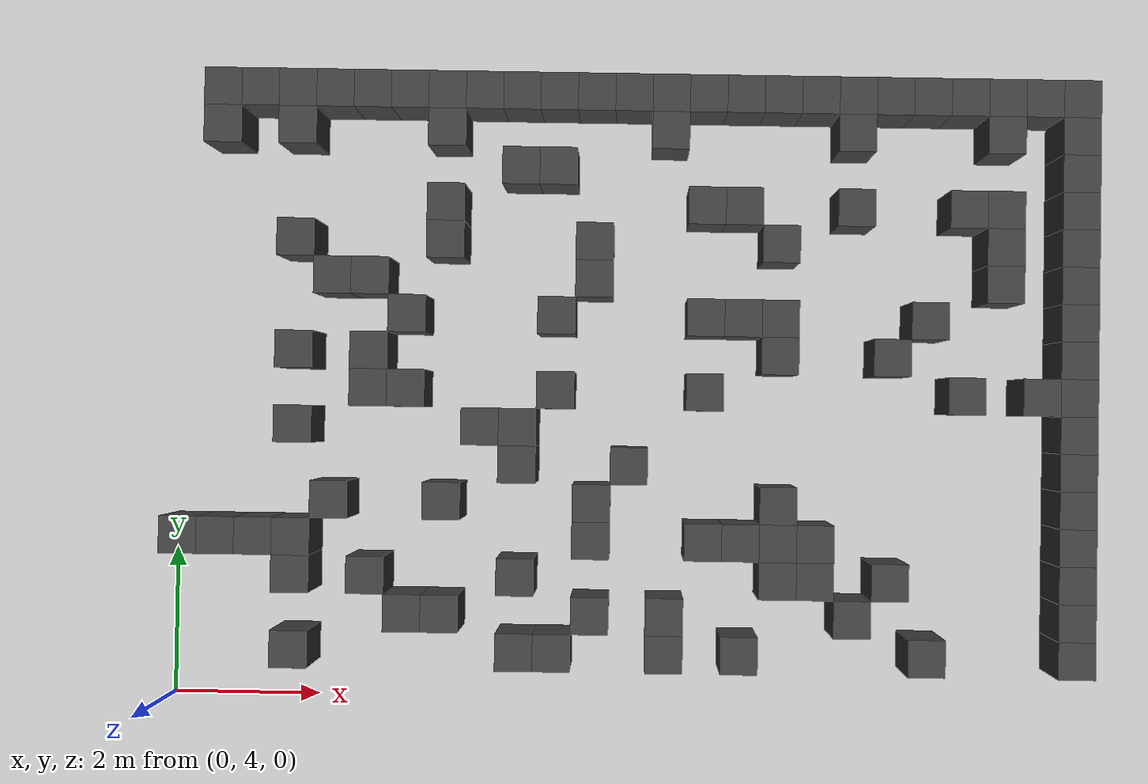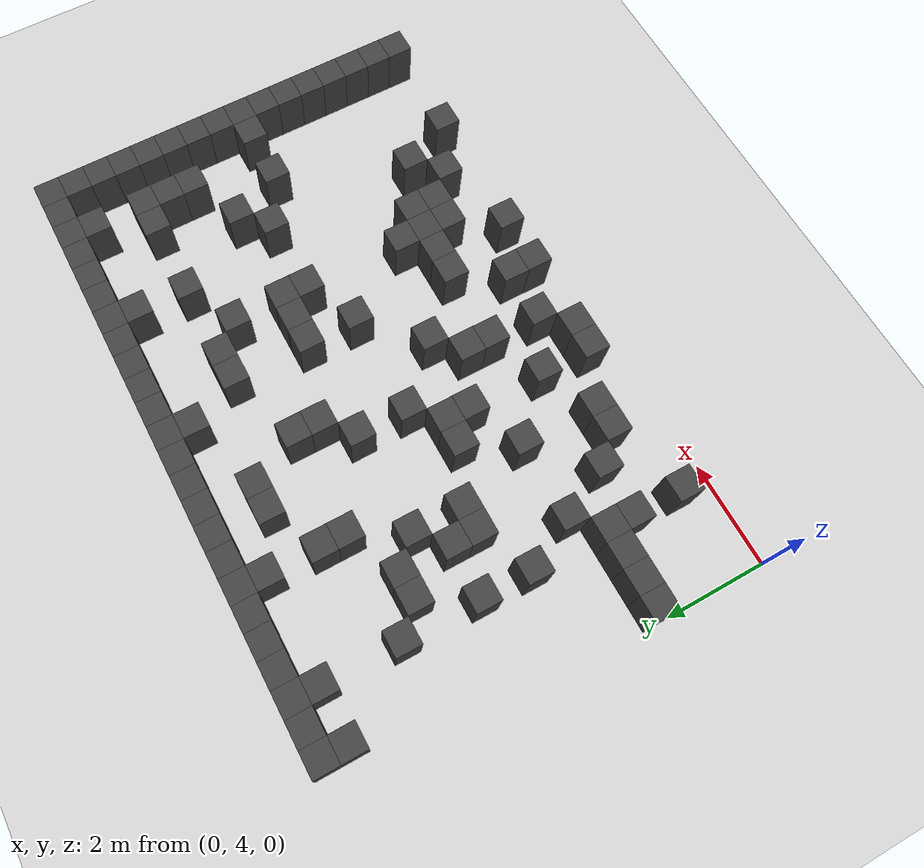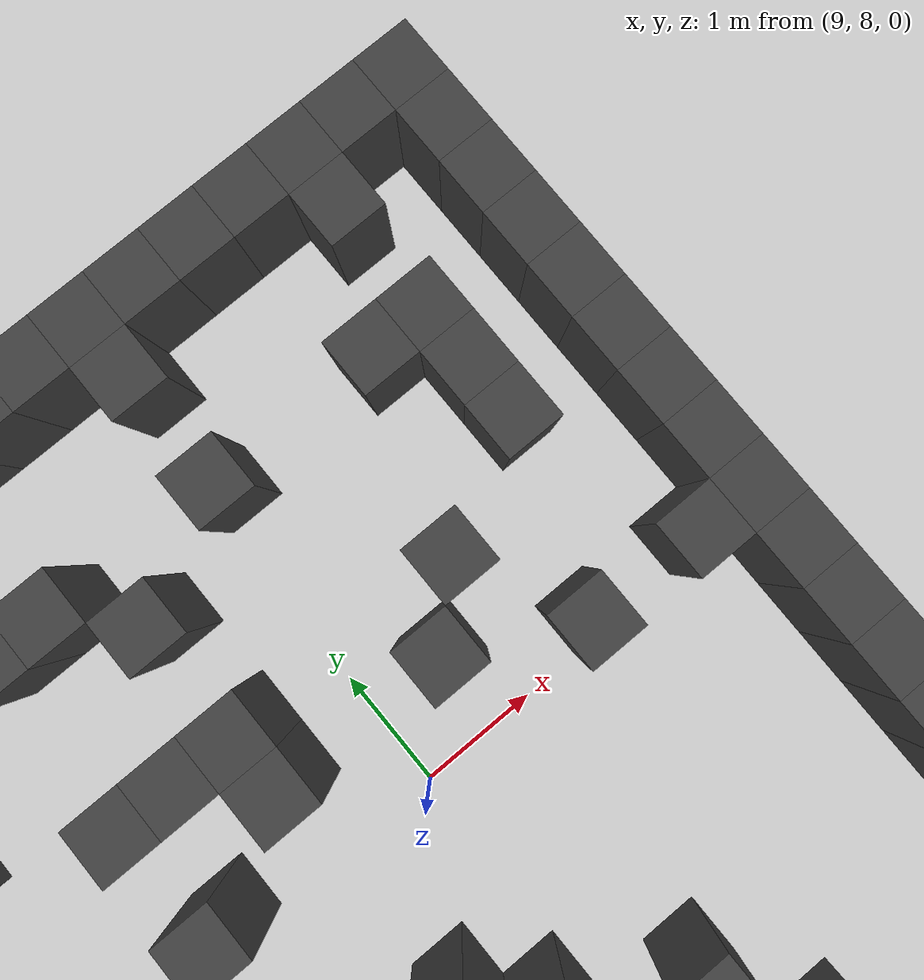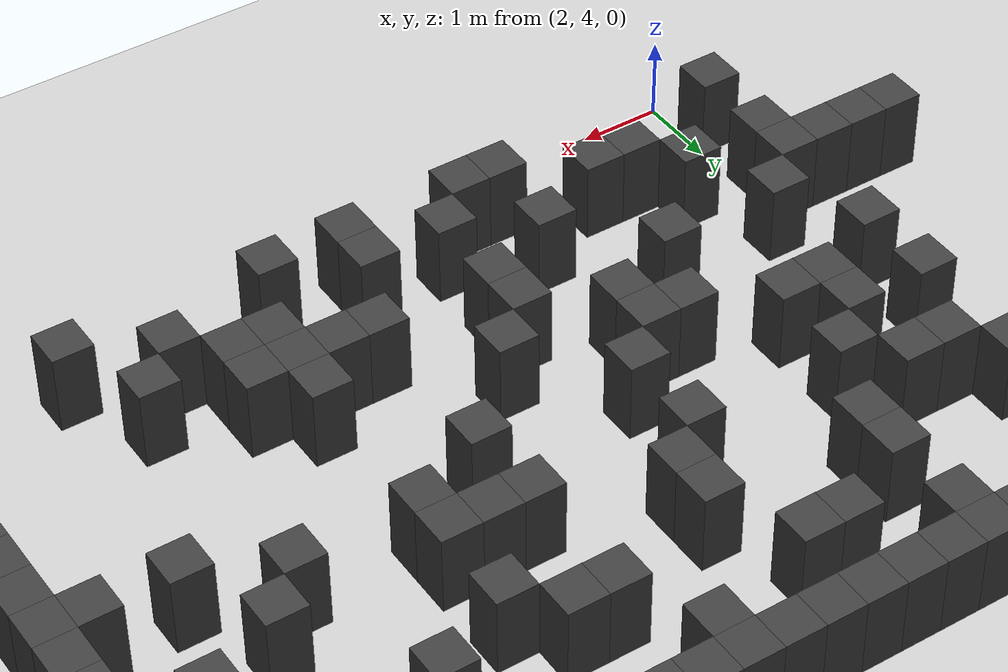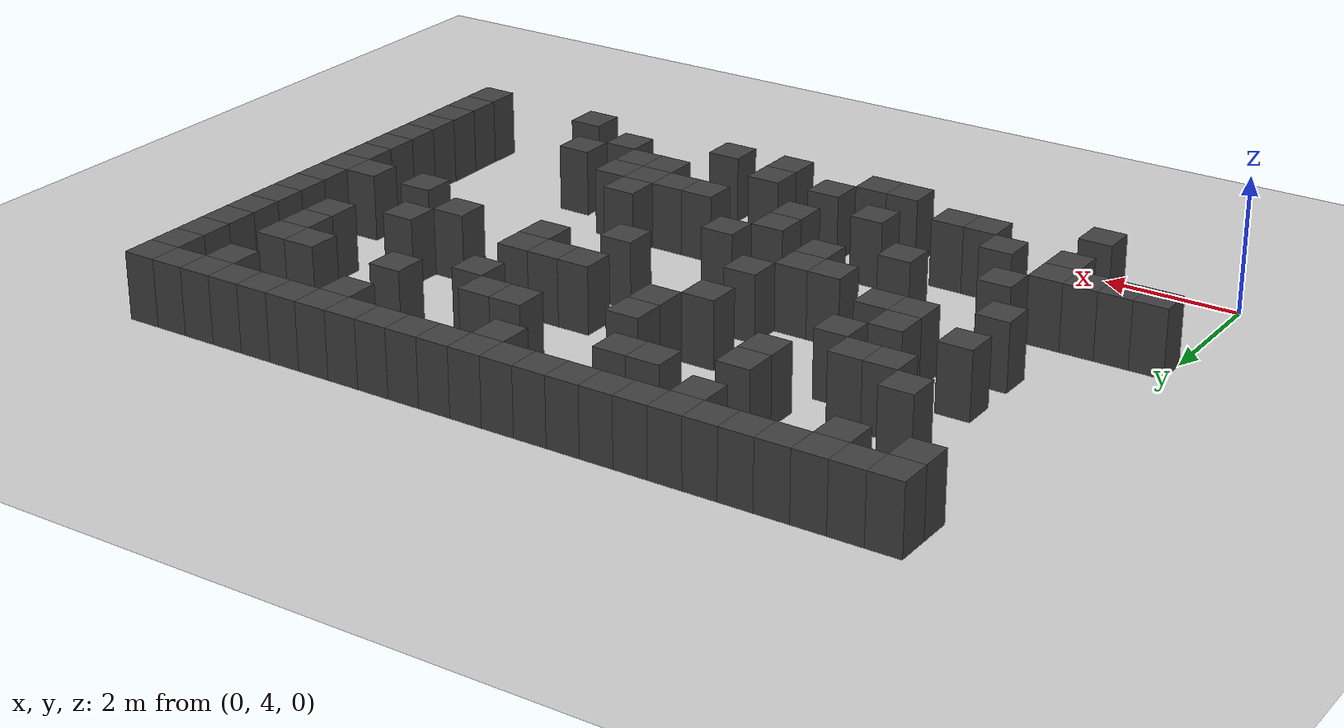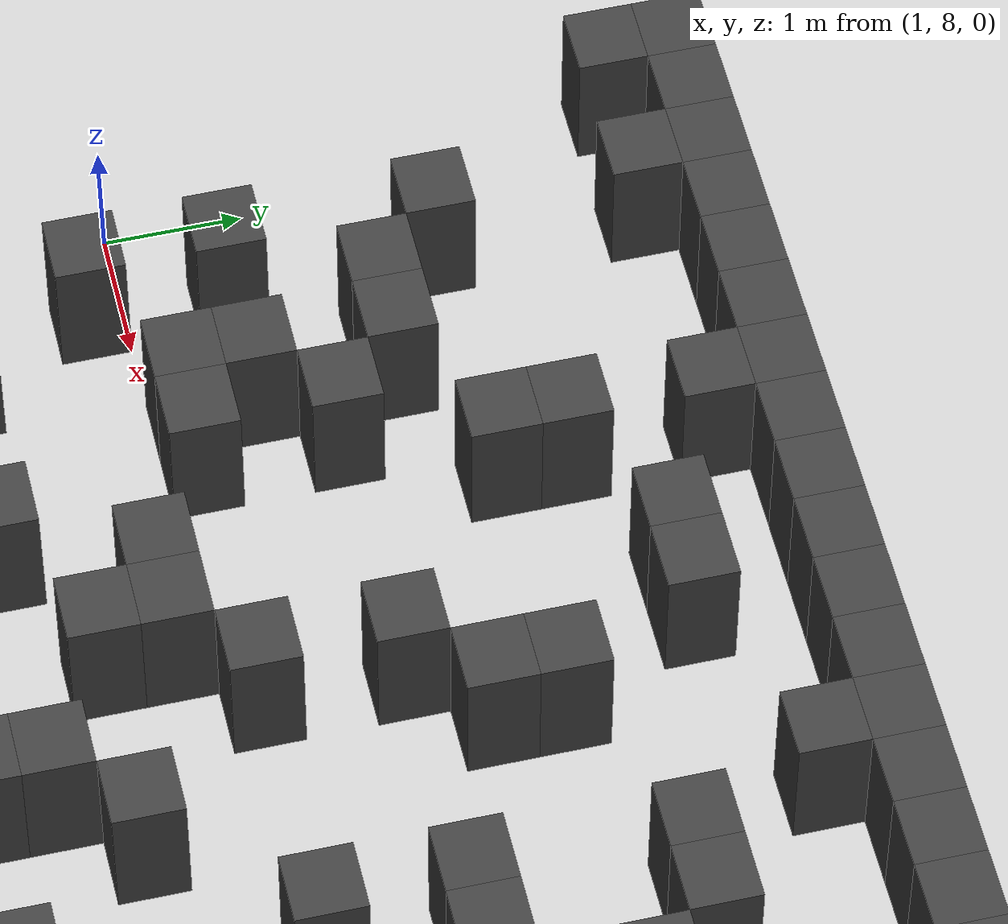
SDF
<sdf version="1.7">
 <world name="map_4302">
  <model name="ground_plane">
   <static>true</static>
   <link name="link">
    <collision name="collision">
     <geometry><plane><normal>0 0 1</normal><size>200 200</size></plane></geometry>
    </collision>
    <visual name="visual">
     <geometry><plane><normal>0 0 1</normal><size>200 200</size></plane></geometry>
     <material><ambient>0.8 0.8 0.8 1</ambient><diffuse>0.8 0.8 0.8 1</diffuse></material>
    </visual>
   </link>
  </model>
  <model name="maze_environment">
   <static>true</static>
   <link name="wall_26">
    <pose>0.750 12.250 0.500 0 0 0</pose>
    <collision name="col"><geometry><box><size>0.5 0.5 1.0</size></box></geometry></collision>
    <visual name="vis">
     <geometry><box><size>0.5 0.5 1.0</size></box></geometry>
     <material><ambient>0.15 0.15 0.15 1</ambient><diffuse>0.25 0.25 0.25 1</diffuse></material>
    </visual>
   </link>
   <link name="wall_27">
    <pose>1.250 12.250 0.500 0 0 0</pose>
    <collision name="col"><geometry><box><size>0.5 0.5 1.0</size></box></geometry></collision>
    <visual name="vis">
     <geometry><box><size>0.5 0.5 1.0</size></box></geometry>
     <material><ambient>0.15 0.15 0.15 1</ambient><diffuse>0.25 0.25 0.25 1</diffuse></material>
    </visual>
   </link>
   <link name="wall_28">
    <pose>1.750 12.250 0.500 0 0 0</pose>
    <collision name="col"><geometry><box><size>0.5 0.5 1.0</size></box></geometry></collision>
    <visual name="vis">
     <geometry><box><size>0.5 0.5 1.0</size></box></geometry>
     <material><ambient>0.15 0.15 0.15 1</ambient><diffuse>0.25 0.25 0.25 1</diffuse></material>
    </visual>
   </link>
   <link name="wall_29">
    <pose>2.250 12.250 0.500 0 0 0</pose>
    <collision name="col"><geometry><box><size>0.5 0.5 1.0</size></box></geometry></collision>
    <visual name="vis">
     <geometry><box><size>0.5 0.5 1.0</size></box></geometry>
     <material><ambient>0.15 0.15 0.15 1</ambient><diffuse>0.25 0.25 0.25 1</diffuse></material>
    </visual>
   </link>
   <link name="wall_30">
    <pose>2.750 12.250 0.500 0 0 0</pose>
    <collision name="col"><geometry><box><size>0.5 0.5 1.0</size></box></geometry></collision>
    <visual name="vis">
     <geometry><box><size>0.5 0.5 1.0</size></box></geometry>
     <material><ambient>0.15 0.15 0.15 1</ambient><diffuse>0.25 0.25 0.25 1</diffuse></material>
    </visual>
   </link>
   <link name="wall_31">
    <pose>3.250 12.250 0.500 0 0 0</pose>
    <collision name="col"><geometry><box><size>0.5 0.5 1.0</size></box></geometry></collision>
    <visual name="vis">
     <geometry><box><size>0.5 0.5 1.0</size></box></geometry>
     <material><ambient>0.15 0.15 0.15 1</ambient><diffuse>0.25 0.25 0.25 1</diffuse></material>
    </visual>
   </link>
   <link name="wall_32">
    <pose>3.750 12.250 0.500 0 0 0</pose>
    <collision name="col"><geometry><box><size>0.5 0.5 1.0</size></box></geometry></collision>
    <visual name="vis">
     <geometry><box><size>0.5 0.5 1.0</size></box></geometry>
     <material><ambient>0.15 0.15 0.15 1</ambient><diffuse>0.25 0.25 0.25 1</diffuse></material>
    </visual>
   </link>
   <link name="wall_33">
    <pose>4.250 12.250 0.500 0 0 0</pose>
    <collision name="col"><geometry><box><size>0.5 0.5 1.0</size></box></geometry></collision>
    <visual name="vis">
     <geometry><box><size>0.5 0.5 1.0</size></box></geometry>
     <material><ambient>0.15 0.15 0.15 1</ambient><diffuse>0.25 0.25 0.25 1</diffuse></material>
    </visual>
   </link>
   <link name="wall_34">
    <pose>4.750 12.250 0.500 0 0 0</pose>
    <collision name="col"><geometry><box><size>0.5 0.5 1.0</size></box></geometry></collision>
    <visual name="vis">
     <geometry><box><size>0.5 0.5 1.0</size></box></geometry>
     <material><ambient>0.15 0.15 0.15 1</ambient><diffuse>0.25 0.25 0.25 1</diffuse></material>
    </visual>
   </link>
   <link name="wall_35">
    <pose>5.250 12.250 0.500 0 0 0</pose>
    <collision name="col"><geometry><box><size>0.5 0.5 1.0</size></box></geometry></collision>
    <visual name="vis">
     <geometry><box><size>0.5 0.5 1.0</size></box></geometry>
     <material><ambient>0.15 0.15 0.15 1</ambient><diffuse>0.25 0.25 0.25 1</diffuse></material>
    </visual>
   </link>
   <link name="wall_36">
    <pose>5.750 12.250 0.500 0 0 0</pose>
    <collision name="col"><geometry><box><size>0.5 0.5 1.0</size></box></geometry></collision>
    <visual name="vis">
     <geometry><box><size>0.5 0.5 1.0</size></box></geometry>
     <material><ambient>0.15 0.15 0.15 1</ambient><diffuse>0.25 0.25 0.25 1</diffuse></material>
    </visual>
   </link>
   <link name="wall_37">
    <pose>6.250 12.250 0.500 0 0 0</pose>
    <collision name="col"><geometry><box><size>0.5 0.5 1.0</size></box></geometry></collision>
    <visual name="vis">
     <geometry><box><size>0.5 0.5 1.0</size></box></geometry>
     <material><ambient>0.15 0.15 0.15 1</ambient><diffuse>0.25 0.25 0.25 1</diffuse></material>
    </visual>
   </link>
   <link name="wall_38">
    <pose>6.750 12.250 0.500 0 0 0</pose>
    <collision name="col"><geometry><box><size>0.5 0.5 1.0</size></box></geometry></collision>
    <visual name="vis">
     <geometry><box><size>0.5 0.5 1.0</size></box></geometry>
     <material><ambient>0.15 0.15 0.15 1</ambient><diffuse>0.25 0.25 0.25 1</diffuse></material>
    </visual>
   </link>
   <link name="wall_39">
    <pose>7.250 12.250 0.500 0 0 0</pose>
    <collision name="col"><geometry><box><size>0.5 0.5 1.0</size></box></geometry></collision>
    <visual name="vis">
     <geometry><box><size>0.5 0.5 1.0</size></box></geometry>
     <material><ambient>0.15 0.15 0.15 1</ambient><diffuse>0.25 0.25 0.25 1</diffuse></material>
    </visual>
   </link>
   <link name="wall_40">
    <pose>7.750 12.250 0.500 0 0 0</pose>
    <collision name="col"><geometry><box><size>0.5 0.5 1.0</size></box></geometry></collision>
    <visual name="vis">
     <geometry><box><size>0.5 0.5 1.0</size></box></geometry>
     <material><ambient>0.15 0.15 0.15 1</ambient><diffuse>0.25 0.25 0.25 1</diffuse></material>
    </visual>
   </link>
   <link name="wall_41">
    <pose>8.250 12.250 0.500 0 0 0</pose>
    <collision name="col"><geometry><box><size>0.5 0.5 1.0</size></box></geometry></collision>
    <visual name="vis">
     <geometry><box><size>0.5 0.5 1.0</size></box></geometry>
     <material><ambient>0.15 0.15 0.15 1</ambient><diffuse>0.25 0.25 0.25 1</diffuse></material>
    </visual>
   </link>
   <link name="wall_42">
    <pose>8.750 12.250 0.500 0 0 0</pose>
    <collision name="col"><geometry><box><size>0.5 0.5 1.0</size></box></geometry></collision>
    <visual name="vis">
     <geometry><box><size>0.5 0.5 1.0</size></box></geometry>
     <material><ambient>0.15 0.15 0.15 1</ambient><diffuse>0.25 0.25 0.25 1</diffuse></material>
    </visual>
   </link>
   <link name="wall_43">
    <pose>9.250 12.250 0.500 0 0 0</pose>
    <collision name="col"><geometry><box><size>0.5 0.5 1.0</size></box></geometry></collision>
    <visual name="vis">
     <geometry><box><size>0.5 0.5 1.0</size></box></geometry>
     <material><ambient>0.15 0.15 0.15 1</ambient><diffuse>0.25 0.25 0.25 1</diffuse></material>
    </visual>
   </link>
   <link name="wall_44">
    <pose>9.750 12.250 0.500 0 0 0</pose>
    <collision name="col"><geometry><box><size>0.5 0.5 1.0</size></box></geometry></collision>
    <visual name="vis">
     <geometry><box><size>0.5 0.5 1.0</size></box></geometry>
     <material><ambient>0.15 0.15 0.15 1</ambient><diffuse>0.25 0.25 0.25 1</diffuse></material>
    </visual>
   </link>
   <link name="wall_45">
    <pose>10.250 12.250 0.500 0 0 0</pose>
    <collision name="col"><geometry><box><size>0.5 0.5 1.0</size></box></geometry></collision>
    <visual name="vis">
     <geometry><box><size>0.5 0.5 1.0</size></box></geometry>
     <material><ambient>0.15 0.15 0.15 1</ambient><diffuse>0.25 0.25 0.25 1</diffuse></material>
    </visual>
   </link>
   <link name="wall_46">
    <pose>10.750 12.250 0.500 0 0 0</pose>
    <collision name="col"><geometry><box><size>0.5 0.5 1.0</size></box></geometry></collision>
    <visual name="vis">
     <geometry><box><size>0.5 0.5 1.0</size></box></geometry>
     <material><ambient>0.15 0.15 0.15 1</ambient><diffuse>0.25 0.25 0.25 1</diffuse></material>
    </visual>
   </link>
   <link name="wall_47">
    <pose>11.250 12.250 0.500 0 0 0</pose>
    <collision name="col"><geometry><box><size>0.5 0.5 1.0</size></box></geometry></collision>
    <visual name="vis">
     <geometry><box><size>0.5 0.5 1.0</size></box></geometry>
     <material><ambient>0.15 0.15 0.15 1</ambient><diffuse>0.25 0.25 0.25 1</diffuse></material>
    </visual>
   </link>
   <link name="wall_48">
    <pose>11.750 12.250 0.500 0 0 0</pose>
    <collision name="col"><geometry><box><size>0.5 0.5 1.0</size></box></geometry></collision>
    <visual name="vis">
     <geometry><box><size>0.5 0.5 1.0</size></box></geometry>
     <material><ambient>0.15 0.15 0.15 1</ambient><diffuse>0.25 0.25 0.25 1</diffuse></material>
    </visual>
   </link>
   <link name="wall_49">
    <pose>12.250 12.250 0.500 0 0 0</pose>
    <collision name="col"><geometry><box><size>0.5 0.5 1.0</size></box></geometry></collision>
    <visual name="vis">
     <geometry><box><size>0.5 0.5 1.0</size></box></geometry>
     <material><ambient>0.15 0.15 0.15 1</ambient><diffuse>0.25 0.25 0.25 1</diffuse></material>
    </visual>
   </link>
   <link name="wall_55">
    <pose>0.750 11.750 0.500 0 0 0</pose>
    <collision name="col"><geometry><box><size>0.5 0.5 1.0</size></box></geometry></collision>
    <visual name="vis">
     <geometry><box><size>0.5 0.5 1.0</size></box></geometry>
     <material><ambient>0.15 0.15 0.15 1</ambient><diffuse>0.25 0.25 0.25 1</diffuse></material>
    </visual>
   </link>
   <link name="wall_56">
    <pose>1.750 11.750 0.500 0 0 0</pose>
    <collision name="col"><geometry><box><size>0.5 0.5 1.0</size></box></geometry></collision>
    <visual name="vis">
     <geometry><box><size>0.5 0.5 1.0</size></box></geometry>
     <material><ambient>0.15 0.15 0.15 1</ambient><diffuse>0.25 0.25 0.25 1</diffuse></material>
    </visual>
   </link>
   <link name="wall_57">
    <pose>3.750 11.750 0.500 0 0 0</pose>
    <collision name="col"><geometry><box><size>0.5 0.5 1.0</size></box></geometry></collision>
    <visual name="vis">
     <geometry><box><size>0.5 0.5 1.0</size></box></geometry>
     <material><ambient>0.15 0.15 0.15 1</ambient><diffuse>0.25 0.25 0.25 1</diffuse></material>
    </visual>
   </link>
   <link name="wall_58">
    <pose>6.750 11.750 0.500 0 0 0</pose>
    <collision name="col"><geometry><box><size>0.5 0.5 1.0</size></box></geometry></collision>
    <visual name="vis">
     <geometry><box><size>0.5 0.5 1.0</size></box></geometry>
     <material><ambient>0.15 0.15 0.15 1</ambient><diffuse>0.25 0.25 0.25 1</diffuse></material>
    </visual>
   </link>
   <link name="wall_59">
    <pose>9.250 11.750 0.500 0 0 0</pose>
    <collision name="col"><geometry><box><size>0.5 0.5 1.0</size></box></geometry></collision>
    <visual name="vis">
     <geometry><box><size>0.5 0.5 1.0</size></box></geometry>
     <material><ambient>0.15 0.15 0.15 1</ambient><diffuse>0.25 0.25 0.25 1</diffuse></material>
    </visual>
   </link>
   <link name="wall_60">
    <pose>11.250 11.750 0.500 0 0 0</pose>
    <collision name="col"><geometry><box><size>0.5 0.5 1.0</size></box></geometry></collision>
    <visual name="vis">
     <geometry><box><size>0.5 0.5 1.0</size></box></geometry>
     <material><ambient>0.15 0.15 0.15 1</ambient><diffuse>0.25 0.25 0.25 1</diffuse></material>
    </visual>
   </link>
   <link name="wall_61">
    <pose>12.250 11.750 0.500 0 0 0</pose>
    <collision name="col"><geometry><box><size>0.5 0.5 1.0</size></box></geometry></collision>
    <visual name="vis">
     <geometry><box><size>0.5 0.5 1.0</size></box></geometry>
     <material><ambient>0.15 0.15 0.15 1</ambient><diffuse>0.25 0.25 0.25 1</diffuse></material>
    </visual>
   </link>
   <link name="wall_66">
    <pose>4.750 11.250 0.500 0 0 0</pose>
    <collision name="col"><geometry><box><size>0.5 0.5 1.0</size></box></geometry></collision>
    <visual name="vis">
     <geometry><box><size>0.5 0.5 1.0</size></box></geometry>
     <material><ambient>0.15 0.15 0.15 1</ambient><diffuse>0.25 0.25 0.25 1</diffuse></material>
    </visual>
   </link>
   <link name="wall_67">
    <pose>5.250 11.250 0.500 0 0 0</pose>
    <collision name="col"><geometry><box><size>0.5 0.5 1.0</size></box></geometry></collision>
    <visual name="vis">
     <geometry><box><size>0.5 0.5 1.0</size></box></geometry>
     <material><ambient>0.15 0.15 0.15 1</ambient><diffuse>0.25 0.25 0.25 1</diffuse></material>
    </visual>
   </link>
   <link name="wall_68">
    <pose>12.250 11.250 0.500 0 0 0</pose>
    <collision name="col"><geometry><box><size>0.5 0.5 1.0</size></box></geometry></collision>
    <visual name="vis">
     <geometry><box><size>0.5 0.5 1.0</size></box></geometry>
     <material><ambient>0.15 0.15 0.15 1</ambient><diffuse>0.25 0.25 0.25 1</diffuse></material>
    </visual>
   </link>
   <link name="wall_80">
    <pose>3.750 10.750 0.500 0 0 0</pose>
    <collision name="col"><geometry><box><size>0.5 0.5 1.0</size></box></geometry></collision>
    <visual name="vis">
     <geometry><box><size>0.5 0.5 1.0</size></box></geometry>
     <material><ambient>0.15 0.15 0.15 1</ambient><diffuse>0.25 0.25 0.25 1</diffuse></material>
    </visual>
   </link>
   <link name="wall_81">
    <pose>7.250 10.750 0.500 0 0 0</pose>
    <collision name="col"><geometry><box><size>0.5 0.5 1.0</size></box></geometry></collision>
    <visual name="vis">
     <geometry><box><size>0.5 0.5 1.0</size></box></geometry>
     <material><ambient>0.15 0.15 0.15 1</ambient><diffuse>0.25 0.25 0.25 1</diffuse></material>
    </visual>
   </link>
   <link name="wall_82">
    <pose>7.750 10.750 0.500 0 0 0</pose>
    <collision name="col"><geometry><box><size>0.5 0.5 1.0</size></box></geometry></collision>
    <visual name="vis">
     <geometry><box><size>0.5 0.5 1.0</size></box></geometry>
     <material><ambient>0.15 0.15 0.15 1</ambient><diffuse>0.25 0.25 0.25 1</diffuse></material>
    </visual>
   </link>
   <link name="wall_83">
    <pose>9.250 10.750 0.500 0 0 0</pose>
    <collision name="col"><geometry><box><size>0.5 0.5 1.0</size></box></geometry></collision>
    <visual name="vis">
     <geometry><box><size>0.5 0.5 1.0</size></box></geometry>
     <material><ambient>0.15 0.15 0.15 1</ambient><diffuse>0.25 0.25 0.25 1</diffuse></material>
    </visual>
   </link>
   <link name="wall_84">
    <pose>10.750 10.750 0.500 0 0 0</pose>
    <collision name="col"><geometry><box><size>0.5 0.5 1.0</size></box></geometry></collision>
    <visual name="vis">
     <geometry><box><size>0.5 0.5 1.0</size></box></geometry>
     <material><ambient>0.15 0.15 0.15 1</ambient><diffuse>0.25 0.25 0.25 1</diffuse></material>
    </visual>
   </link>
   <link name="wall_85">
    <pose>11.250 10.750 0.500 0 0 0</pose>
    <collision name="col"><geometry><box><size>0.5 0.5 1.0</size></box></geometry></collision>
    <visual name="vis">
     <geometry><box><size>0.5 0.5 1.0</size></box></geometry>
     <material><ambient>0.15 0.15 0.15 1</ambient><diffuse>0.25 0.25 0.25 1</diffuse></material>
    </visual>
   </link>
   <link name="wall_86">
    <pose>12.250 10.750 0.500 0 0 0</pose>
    <collision name="col"><geometry><box><size>0.5 0.5 1.0</size></box></geometry></collision>
    <visual name="vis">
     <geometry><box><size>0.5 0.5 1.0</size></box></geometry>
     <material><ambient>0.15 0.15 0.15 1</ambient><diffuse>0.25 0.25 0.25 1</diffuse></material>
    </visual>
   </link>
   <link name="wall_93">
    <pose>1.750 10.250 0.500 0 0 0</pose>
    <collision name="col"><geometry><box><size>0.5 0.5 1.0</size></box></geometry></collision>
    <visual name="vis">
     <geometry><box><size>0.5 0.5 1.0</size></box></geometry>
     <material><ambient>0.15 0.15 0.15 1</ambient><diffuse>0.25 0.25 0.25 1</diffuse></material>
    </visual>
   </link>
   <link name="wall_94">
    <pose>3.750 10.250 0.500 0 0 0</pose>
    <collision name="col"><geometry><box><size>0.5 0.5 1.0</size></box></geometry></collision>
    <visual name="vis">
     <geometry><box><size>0.5 0.5 1.0</size></box></geometry>
     <material><ambient>0.15 0.15 0.15 1</ambient><diffuse>0.25 0.25 0.25 1</diffuse></material>
    </visual>
   </link>
   <link name="wall_95">
    <pose>5.750 10.250 0.500 0 0 0</pose>
    <collision name="col"><geometry><box><size>0.5 0.5 1.0</size></box></geometry></collision>
    <visual name="vis">
     <geometry><box><size>0.5 0.5 1.0</size></box></geometry>
     <material><ambient>0.15 0.15 0.15 1</ambient><diffuse>0.25 0.25 0.25 1</diffuse></material>
    </visual>
   </link>
   <link name="wall_96">
    <pose>8.250 10.250 0.500 0 0 0</pose>
    <collision name="col"><geometry><box><size>0.5 0.5 1.0</size></box></geometry></collision>
    <visual name="vis">
     <geometry><box><size>0.5 0.5 1.0</size></box></geometry>
     <material><ambient>0.15 0.15 0.15 1</ambient><diffuse>0.25 0.25 0.25 1</diffuse></material>
    </visual>
   </link>
   <link name="wall_97">
    <pose>11.250 10.250 0.500 0 0 0</pose>
    <collision name="col"><geometry><box><size>0.5 0.5 1.0</size></box></geometry></collision>
    <visual name="vis">
     <geometry><box><size>0.5 0.5 1.0</size></box></geometry>
     <material><ambient>0.15 0.15 0.15 1</ambient><diffuse>0.25 0.25 0.25 1</diffuse></material>
    </visual>
   </link>
   <link name="wall_98">
    <pose>12.250 10.250 0.500 0 0 0</pose>
    <collision name="col"><geometry><box><size>0.5 0.5 1.0</size></box></geometry></collision>
    <visual name="vis">
     <geometry><box><size>0.5 0.5 1.0</size></box></geometry>
     <material><ambient>0.15 0.15 0.15 1</ambient><diffuse>0.25 0.25 0.25 1</diffuse></material>
    </visual>
   </link>
   <link name="wall_103">
    <pose>2.250 9.750 0.500 0 0 0</pose>
    <collision name="col"><geometry><box><size>0.5 0.5 1.0</size></box></geometry></collision>
    <visual name="vis">
     <geometry><box><size>0.5 0.5 1.0</size></box></geometry>
     <material><ambient>0.15 0.15 0.15 1</ambient><diffuse>0.25 0.25 0.25 1</diffuse></material>
    </visual>
   </link>
   <link name="wall_104">
    <pose>2.750 9.750 0.500 0 0 0</pose>
    <collision name="col"><geometry><box><size>0.5 0.5 1.0</size></box></geometry></collision>
    <visual name="vis">
     <geometry><box><size>0.5 0.5 1.0</size></box></geometry>
     <material><ambient>0.15 0.15 0.15 1</ambient><diffuse>0.25 0.25 0.25 1</diffuse></material>
    </visual>
   </link>
   <link name="wall_105">
    <pose>5.750 9.750 0.500 0 0 0</pose>
    <collision name="col"><geometry><box><size>0.5 0.5 1.0</size></box></geometry></collision>
    <visual name="vis">
     <geometry><box><size>0.5 0.5 1.0</size></box></geometry>
     <material><ambient>0.15 0.15 0.15 1</ambient><diffuse>0.25 0.25 0.25 1</diffuse></material>
    </visual>
   </link>
   <link name="wall_106">
    <pose>11.250 9.750 0.500 0 0 0</pose>
    <collision name="col"><geometry><box><size>0.5 0.5 1.0</size></box></geometry></collision>
    <visual name="vis">
     <geometry><box><size>0.5 0.5 1.0</size></box></geometry>
     <material><ambient>0.15 0.15 0.15 1</ambient><diffuse>0.25 0.25 0.25 1</diffuse></material>
    </visual>
   </link>
   <link name="wall_107">
    <pose>12.250 9.750 0.500 0 0 0</pose>
    <collision name="col"><geometry><box><size>0.5 0.5 1.0</size></box></geometry></collision>
    <visual name="vis">
     <geometry><box><size>0.5 0.5 1.0</size></box></geometry>
     <material><ambient>0.15 0.15 0.15 1</ambient><diffuse>0.25 0.25 0.25 1</diffuse></material>
    </visual>
   </link>
   <link name="wall_112">
    <pose>3.250 9.250 0.500 0 0 0</pose>
    <collision name="col"><geometry><box><size>0.5 0.5 1.0</size></box></geometry></collision>
    <visual name="vis">
     <geometry><box><size>0.5 0.5 1.0</size></box></geometry>
     <material><ambient>0.15 0.15 0.15 1</ambient><diffuse>0.25 0.25 0.25 1</diffuse></material>
    </visual>
   </link>
   <link name="wall_113">
    <pose>5.250 9.250 0.500 0 0 0</pose>
    <collision name="col"><geometry><box><size>0.5 0.5 1.0</size></box></geometry></collision>
    <visual name="vis">
     <geometry><box><size>0.5 0.5 1.0</size></box></geometry>
     <material><ambient>0.15 0.15 0.15 1</ambient><diffuse>0.25 0.25 0.25 1</diffuse></material>
    </visual>
   </link>
   <link name="wall_114">
    <pose>7.250 9.250 0.500 0 0 0</pose>
    <collision name="col"><geometry><box><size>0.5 0.5 1.0</size></box></geometry></collision>
    <visual name="vis">
     <geometry><box><size>0.5 0.5 1.0</size></box></geometry>
     <material><ambient>0.15 0.15 0.15 1</ambient><diffuse>0.25 0.25 0.25 1</diffuse></material>
    </visual>
   </link>
   <link name="wall_115">
    <pose>7.750 9.250 0.500 0 0 0</pose>
    <collision name="col"><geometry><box><size>0.5 0.5 1.0</size></box></geometry></collision>
    <visual name="vis">
     <geometry><box><size>0.5 0.5 1.0</size></box></geometry>
     <material><ambient>0.15 0.15 0.15 1</ambient><diffuse>0.25 0.25 0.25 1</diffuse></material>
    </visual>
   </link>
   <link name="wall_116">
    <pose>8.250 9.250 0.500 0 0 0</pose>
    <collision name="col"><geometry><box><size>0.5 0.5 1.0</size></box></geometry></collision>
    <visual name="vis">
     <geometry><box><size>0.5 0.5 1.0</size></box></geometry>
     <material><ambient>0.15 0.15 0.15 1</ambient><diffuse>0.25 0.25 0.25 1</diffuse></material>
    </visual>
   </link>
   <link name="wall_117">
    <pose>10.250 9.250 0.500 0 0 0</pose>
    <collision name="col"><geometry><box><size>0.5 0.5 1.0</size></box></geometry></collision>
    <visual name="vis">
     <geometry><box><size>0.5 0.5 1.0</size></box></geometry>
     <material><ambient>0.15 0.15 0.15 1</ambient><diffuse>0.25 0.25 0.25 1</diffuse></material>
    </visual>
   </link>
   <link name="wall_118">
    <pose>12.250 9.250 0.500 0 0 0</pose>
    <collision name="col"><geometry><box><size>0.5 0.5 1.0</size></box></geometry></collision>
    <visual name="vis">
     <geometry><box><size>0.5 0.5 1.0</size></box></geometry>
     <material><ambient>0.15 0.15 0.15 1</ambient><diffuse>0.25 0.25 0.25 1</diffuse></material>
    </visual>
   </link>
   <link name="wall_123">
    <pose>1.750 8.750 0.500 0 0 0</pose>
    <collision name="col"><geometry><box><size>0.5 0.5 1.0</size></box></geometry></collision>
    <visual name="vis">
     <geometry><box><size>0.5 0.5 1.0</size></box></geometry>
     <material><ambient>0.15 0.15 0.15 1</ambient><diffuse>0.25 0.25 0.25 1</diffuse></material>
    </visual>
   </link>
   <link name="wall_124">
    <pose>2.750 8.750 0.500 0 0 0</pose>
    <collision name="col"><geometry><box><size>0.5 0.5 1.0</size></box></geometry></collision>
    <visual name="vis">
     <geometry><box><size>0.5 0.5 1.0</size></box></geometry>
     <material><ambient>0.15 0.15 0.15 1</ambient><diffuse>0.25 0.25 0.25 1</diffuse></material>
    </visual>
   </link>
   <link name="wall_125">
    <pose>8.250 8.750 0.500 0 0 0</pose>
    <collision name="col"><geometry><box><size>0.5 0.5 1.0</size></box></geometry></collision>
    <visual name="vis">
     <geometry><box><size>0.5 0.5 1.0</size></box></geometry>
     <material><ambient>0.15 0.15 0.15 1</ambient><diffuse>0.25 0.25 0.25 1</diffuse></material>
    </visual>
   </link>
   <link name="wall_126">
    <pose>9.750 8.750 0.500 0 0 0</pose>
    <collision name="col"><geometry><box><size>0.5 0.5 1.0</size></box></geometry></collision>
    <visual name="vis">
     <geometry><box><size>0.5 0.5 1.0</size></box></geometry>
     <material><ambient>0.15 0.15 0.15 1</ambient><diffuse>0.25 0.25 0.25 1</diffuse></material>
    </visual>
   </link>
   <link name="wall_127">
    <pose>12.250 8.750 0.500 0 0 0</pose>
    <collision name="col"><geometry><box><size>0.5 0.5 1.0</size></box></geometry></collision>
    <visual name="vis">
     <geometry><box><size>0.5 0.5 1.0</size></box></geometry>
     <material><ambient>0.15 0.15 0.15 1</ambient><diffuse>0.25 0.25 0.25 1</diffuse></material>
    </visual>
   </link>
   <link name="wall_131">
    <pose>2.750 8.250 0.500 0 0 0</pose>
    <collision name="col"><geometry><box><size>0.5 0.5 1.0</size></box></geometry></collision>
    <visual name="vis">
     <geometry><box><size>0.5 0.5 1.0</size></box></geometry>
     <material><ambient>0.15 0.15 0.15 1</ambient><diffuse>0.25 0.25 0.25 1</diffuse></material>
    </visual>
   </link>
   <link name="wall_132">
    <pose>3.250 8.250 0.500 0 0 0</pose>
    <collision name="col"><geometry><box><size>0.5 0.5 1.0</size></box></geometry></collision>
    <visual name="vis">
     <geometry><box><size>0.5 0.5 1.0</size></box></geometry>
     <material><ambient>0.15 0.15 0.15 1</ambient><diffuse>0.25 0.25 0.25 1</diffuse></material>
    </visual>
   </link>
   <link name="wall_133">
    <pose>5.250 8.250 0.500 0 0 0</pose>
    <collision name="col"><geometry><box><size>0.5 0.5 1.0</size></box></geometry></collision>
    <visual name="vis">
     <geometry><box><size>0.5 0.5 1.0</size></box></geometry>
     <material><ambient>0.15 0.15 0.15 1</ambient><diffuse>0.25 0.25 0.25 1</diffuse></material>
    </visual>
   </link>
   <link name="wall_134">
    <pose>7.250 8.250 0.500 0 0 0</pose>
    <collision name="col"><geometry><box><size>0.5 0.5 1.0</size></box></geometry></collision>
    <visual name="vis">
     <geometry><box><size>0.5 0.5 1.0</size></box></geometry>
     <material><ambient>0.15 0.15 0.15 1</ambient><diffuse>0.25 0.25 0.25 1</diffuse></material>
    </visual>
   </link>
   <link name="wall_135">
    <pose>10.750 8.250 0.500 0 0 0</pose>
    <collision name="col"><geometry><box><size>0.5 0.5 1.0</size></box></geometry></collision>
    <visual name="vis">
     <geometry><box><size>0.5 0.5 1.0</size></box></geometry>
     <material><ambient>0.15 0.15 0.15 1</ambient><diffuse>0.25 0.25 0.25 1</diffuse></material>
    </visual>
   </link>
   <link name="wall_136">
    <pose>11.750 8.250 0.500 0 0 0</pose>
    <collision name="col"><geometry><box><size>0.5 0.5 1.0</size></box></geometry></collision>
    <visual name="vis">
     <geometry><box><size>0.5 0.5 1.0</size></box></geometry>
     <material><ambient>0.15 0.15 0.15 1</ambient><diffuse>0.25 0.25 0.25 1</diffuse></material>
    </visual>
   </link>
   <link name="wall_137">
    <pose>12.250 8.250 0.500 0 0 0</pose>
    <collision name="col"><geometry><box><size>0.5 0.5 1.0</size></box></geometry></collision>
    <visual name="vis">
     <geometry><box><size>0.5 0.5 1.0</size></box></geometry>
     <material><ambient>0.15 0.15 0.15 1</ambient><diffuse>0.25 0.25 0.25 1</diffuse></material>
    </visual>
   </link>
   <link name="wall_143">
    <pose>1.750 7.750 0.500 0 0 0</pose>
    <collision name="col"><geometry><box><size>0.5 0.5 1.0</size></box></geometry></collision>
    <visual name="vis">
     <geometry><box><size>0.5 0.5 1.0</size></box></geometry>
     <material><ambient>0.15 0.15 0.15 1</ambient><diffuse>0.25 0.25 0.25 1</diffuse></material>
    </visual>
   </link>
   <link name="wall_144">
    <pose>4.250 7.750 0.500 0 0 0</pose>
    <collision name="col"><geometry><box><size>0.5 0.5 1.0</size></box></geometry></collision>
    <visual name="vis">
     <geometry><box><size>0.5 0.5 1.0</size></box></geometry>
     <material><ambient>0.15 0.15 0.15 1</ambient><diffuse>0.25 0.25 0.25 1</diffuse></material>
    </visual>
   </link>
   <link name="wall_145">
    <pose>4.750 7.750 0.500 0 0 0</pose>
    <collision name="col"><geometry><box><size>0.5 0.5 1.0</size></box></geometry></collision>
    <visual name="vis">
     <geometry><box><size>0.5 0.5 1.0</size></box></geometry>
     <material><ambient>0.15 0.15 0.15 1</ambient><diffuse>0.25 0.25 0.25 1</diffuse></material>
    </visual>
   </link>
   <link name="wall_146">
    <pose>12.250 7.750 0.500 0 0 0</pose>
    <collision name="col"><geometry><box><size>0.5 0.5 1.0</size></box></geometry></collision>
    <visual name="vis">
     <geometry><box><size>0.5 0.5 1.0</size></box></geometry>
     <material><ambient>0.15 0.15 0.15 1</ambient><diffuse>0.25 0.25 0.25 1</diffuse></material>
    </visual>
   </link>
   <link name="wall_156">
    <pose>4.750 7.250 0.500 0 0 0</pose>
    <collision name="col"><geometry><box><size>0.5 0.5 1.0</size></box></geometry></collision>
    <visual name="vis">
     <geometry><box><size>0.5 0.5 1.0</size></box></geometry>
     <material><ambient>0.15 0.15 0.15 1</ambient><diffuse>0.25 0.25 0.25 1</diffuse></material>
    </visual>
   </link>
   <link name="wall_157">
    <pose>6.250 7.250 0.500 0 0 0</pose>
    <collision name="col"><geometry><box><size>0.5 0.5 1.0</size></box></geometry></collision>
    <visual name="vis">
     <geometry><box><size>0.5 0.5 1.0</size></box></geometry>
     <material><ambient>0.15 0.15 0.15 1</ambient><diffuse>0.25 0.25 0.25 1</diffuse></material>
    </visual>
   </link>
   <link name="wall_158">
    <pose>12.250 7.250 0.500 0 0 0</pose>
    <collision name="col"><geometry><box><size>0.5 0.5 1.0</size></box></geometry></collision>
    <visual name="vis">
     <geometry><box><size>0.5 0.5 1.0</size></box></geometry>
     <material><ambient>0.15 0.15 0.15 1</ambient><diffuse>0.25 0.25 0.25 1</diffuse></material>
    </visual>
   </link>
   <link name="wall_166">
    <pose>2.250 6.750 0.500 0 0 0</pose>
    <collision name="col"><geometry><box><size>0.5 0.5 1.0</size></box></geometry></collision>
    <visual name="vis">
     <geometry><box><size>0.5 0.5 1.0</size></box></geometry>
     <material><ambient>0.15 0.15 0.15 1</ambient><diffuse>0.25 0.25 0.25 1</diffuse></material>
    </visual>
   </link>
   <link name="wall_167">
    <pose>3.750 6.750 0.500 0 0 0</pose>
    <collision name="col"><geometry><box><size>0.5 0.5 1.0</size></box></geometry></collision>
    <visual name="vis">
     <geometry><box><size>0.5 0.5 1.0</size></box></geometry>
     <material><ambient>0.15 0.15 0.15 1</ambient><diffuse>0.25 0.25 0.25 1</diffuse></material>
    </visual>
   </link>
   <link name="wall_168">
    <pose>5.750 6.750 0.500 0 0 0</pose>
    <collision name="col"><geometry><box><size>0.5 0.5 1.0</size></box></geometry></collision>
    <visual name="vis">
     <geometry><box><size>0.5 0.5 1.0</size></box></geometry>
     <material><ambient>0.15 0.15 0.15 1</ambient><diffuse>0.25 0.25 0.25 1</diffuse></material>
    </visual>
   </link>
   <link name="wall_169">
    <pose>8.250 6.750 0.500 0 0 0</pose>
    <collision name="col"><geometry><box><size>0.5 0.5 1.0</size></box></geometry></collision>
    <visual name="vis">
     <geometry><box><size>0.5 0.5 1.0</size></box></geometry>
     <material><ambient>0.15 0.15 0.15 1</ambient><diffuse>0.25 0.25 0.25 1</diffuse></material>
    </visual>
   </link>
   <link name="wall_170">
    <pose>12.250 6.750 0.500 0 0 0</pose>
    <collision name="col"><geometry><box><size>0.5 0.5 1.0</size></box></geometry></collision>
    <visual name="vis">
     <geometry><box><size>0.5 0.5 1.0</size></box></geometry>
     <material><ambient>0.15 0.15 0.15 1</ambient><diffuse>0.25 0.25 0.25 1</diffuse></material>
    </visual>
   </link>
   <link name="wall_179">
    <pose>0.250 6.250 0.500 0 0 0</pose>
    <collision name="col"><geometry><box><size>0.5 0.5 1.0</size></box></geometry></collision>
    <visual name="vis">
     <geometry><box><size>0.5 0.5 1.0</size></box></geometry>
     <material><ambient>0.15 0.15 0.15 1</ambient><diffuse>0.25 0.25 0.25 1</diffuse></material>
    </visual>
   </link>
   <link name="wall_180">
    <pose>0.750 6.250 0.500 0 0 0</pose>
    <collision name="col"><geometry><box><size>0.5 0.5 1.0</size></box></geometry></collision>
    <visual name="vis">
     <geometry><box><size>0.5 0.5 1.0</size></box></geometry>
     <material><ambient>0.15 0.15 0.15 1</ambient><diffuse>0.25 0.25 0.25 1</diffuse></material>
    </visual>
   </link>
   <link name="wall_181">
    <pose>1.250 6.250 0.500 0 0 0</pose>
    <collision name="col"><geometry><box><size>0.5 0.5 1.0</size></box></geometry></collision>
    <visual name="vis">
     <geometry><box><size>0.5 0.5 1.0</size></box></geometry>
     <material><ambient>0.15 0.15 0.15 1</ambient><diffuse>0.25 0.25 0.25 1</diffuse></material>
    </visual>
   </link>
   <link name="wall_182">
    <pose>1.750 6.250 0.500 0 0 0</pose>
    <collision name="col"><geometry><box><size>0.5 0.5 1.0</size></box></geometry></collision>
    <visual name="vis">
     <geometry><box><size>0.5 0.5 1.0</size></box></geometry>
     <material><ambient>0.15 0.15 0.15 1</ambient><diffuse>0.25 0.25 0.25 1</diffuse></material>
    </visual>
   </link>
   <link name="wall_183">
    <pose>5.750 6.250 0.500 0 0 0</pose>
    <collision name="col"><geometry><box><size>0.5 0.5 1.0</size></box></geometry></collision>
    <visual name="vis">
     <geometry><box><size>0.5 0.5 1.0</size></box></geometry>
     <material><ambient>0.15 0.15 0.15 1</ambient><diffuse>0.25 0.25 0.25 1</diffuse></material>
    </visual>
   </link>
   <link name="wall_184">
    <pose>7.250 6.250 0.500 0 0 0</pose>
    <collision name="col"><geometry><box><size>0.5 0.5 1.0</size></box></geometry></collision>
    <visual name="vis">
     <geometry><box><size>0.5 0.5 1.0</size></box></geometry>
     <material><ambient>0.15 0.15 0.15 1</ambient><diffuse>0.25 0.25 0.25 1</diffuse></material>
    </visual>
   </link>
   <link name="wall_185">
    <pose>7.750 6.250 0.500 0 0 0</pose>
    <collision name="col"><geometry><box><size>0.5 0.5 1.0</size></box></geometry></collision>
    <visual name="vis">
     <geometry><box><size>0.5 0.5 1.0</size></box></geometry>
     <material><ambient>0.15 0.15 0.15 1</ambient><diffuse>0.25 0.25 0.25 1</diffuse></material>
    </visual>
   </link>
   <link name="wall_186">
    <pose>8.250 6.250 0.500 0 0 0</pose>
    <collision name="col"><geometry><box><size>0.5 0.5 1.0</size></box></geometry></collision>
    <visual name="vis">
     <geometry><box><size>0.5 0.5 1.0</size></box></geometry>
     <material><ambient>0.15 0.15 0.15 1</ambient><diffuse>0.25 0.25 0.25 1</diffuse></material>
    </visual>
   </link>
   <link name="wall_187">
    <pose>8.750 6.250 0.500 0 0 0</pose>
    <collision name="col"><geometry><box><size>0.5 0.5 1.0</size></box></geometry></collision>
    <visual name="vis">
     <geometry><box><size>0.5 0.5 1.0</size></box></geometry>
     <material><ambient>0.15 0.15 0.15 1</ambient><diffuse>0.25 0.25 0.25 1</diffuse></material>
    </visual>
   </link>
   <link name="wall_188">
    <pose>12.250 6.250 0.500 0 0 0</pose>
    <collision name="col"><geometry><box><size>0.5 0.5 1.0</size></box></geometry></collision>
    <visual name="vis">
     <geometry><box><size>0.5 0.5 1.0</size></box></geometry>
     <material><ambient>0.15 0.15 0.15 1</ambient><diffuse>0.25 0.25 0.25 1</diffuse></material>
    </visual>
   </link>
   <link name="wall_195">
    <pose>1.750 5.750 0.500 0 0 0</pose>
    <collision name="col"><geometry><box><size>0.5 0.5 1.0</size></box></geometry></collision>
    <visual name="vis">
     <geometry><box><size>0.5 0.5 1.0</size></box></geometry>
     <material><ambient>0.15 0.15 0.15 1</ambient><diffuse>0.25 0.25 0.25 1</diffuse></material>
    </visual>
   </link>
   <link name="wall_196">
    <pose>2.750 5.750 0.500 0 0 0</pose>
    <collision name="col"><geometry><box><size>0.5 0.5 1.0</size></box></geometry></collision>
    <visual name="vis">
     <geometry><box><size>0.5 0.5 1.0</size></box></geometry>
     <material><ambient>0.15 0.15 0.15 1</ambient><diffuse>0.25 0.25 0.25 1</diffuse></material>
    </visual>
   </link>
   <link name="wall_197">
    <pose>4.750 5.750 0.500 0 0 0</pose>
    <collision name="col"><geometry><box><size>0.5 0.5 1.0</size></box></geometry></collision>
    <visual name="vis">
     <geometry><box><size>0.5 0.5 1.0</size></box></geometry>
     <material><ambient>0.15 0.15 0.15 1</ambient><diffuse>0.25 0.25 0.25 1</diffuse></material>
    </visual>
   </link>
   <link name="wall_198">
    <pose>8.250 5.750 0.500 0 0 0</pose>
    <collision name="col"><geometry><box><size>0.5 0.5 1.0</size></box></geometry></collision>
    <visual name="vis">
     <geometry><box><size>0.5 0.5 1.0</size></box></geometry>
     <material><ambient>0.15 0.15 0.15 1</ambient><diffuse>0.25 0.25 0.25 1</diffuse></material>
    </visual>
   </link>
   <link name="wall_199">
    <pose>8.750 5.750 0.500 0 0 0</pose>
    <collision name="col"><geometry><box><size>0.5 0.5 1.0</size></box></geometry></collision>
    <visual name="vis">
     <geometry><box><size>0.5 0.5 1.0</size></box></geometry>
     <material><ambient>0.15 0.15 0.15 1</ambient><diffuse>0.25 0.25 0.25 1</diffuse></material>
    </visual>
   </link>
   <link name="wall_200">
    <pose>9.750 5.750 0.500 0 0 0</pose>
    <collision name="col"><geometry><box><size>0.5 0.5 1.0</size></box></geometry></collision>
    <visual name="vis">
     <geometry><box><size>0.5 0.5 1.0</size></box></geometry>
     <material><ambient>0.15 0.15 0.15 1</ambient><diffuse>0.25 0.25 0.25 1</diffuse></material>
    </visual>
   </link>
   <link name="wall_201">
    <pose>12.250 5.750 0.500 0 0 0</pose>
    <collision name="col"><geometry><box><size>0.5 0.5 1.0</size></box></geometry></collision>
    <visual name="vis">
     <geometry><box><size>0.5 0.5 1.0</size></box></geometry>
     <material><ambient>0.15 0.15 0.15 1</ambient><diffuse>0.25 0.25 0.25 1</diffuse></material>
    </visual>
   </link>
   <link name="wall_207">
    <pose>3.250 5.250 0.500 0 0 0</pose>
    <collision name="col"><geometry><box><size>0.5 0.5 1.0</size></box></geometry></collision>
    <visual name="vis">
     <geometry><box><size>0.5 0.5 1.0</size></box></geometry>
     <material><ambient>0.15 0.15 0.15 1</ambient><diffuse>0.25 0.25 0.25 1</diffuse></material>
    </visual>
   </link>
   <link name="wall_208">
    <pose>3.750 5.250 0.500 0 0 0</pose>
    <collision name="col"><geometry><box><size>0.5 0.5 1.0</size></box></geometry></collision>
    <visual name="vis">
     <geometry><box><size>0.5 0.5 1.0</size></box></geometry>
     <material><ambient>0.15 0.15 0.15 1</ambient><diffuse>0.25 0.25 0.25 1</diffuse></material>
    </visual>
   </link>
   <link name="wall_209">
    <pose>5.750 5.250 0.500 0 0 0</pose>
    <collision name="col"><geometry><box><size>0.5 0.5 1.0</size></box></geometry></collision>
    <visual name="vis">
     <geometry><box><size>0.5 0.5 1.0</size></box></geometry>
     <material><ambient>0.15 0.15 0.15 1</ambient><diffuse>0.25 0.25 0.25 1</diffuse></material>
    </visual>
   </link>
   <link name="wall_210">
    <pose>6.750 5.250 0.500 0 0 0</pose>
    <collision name="col"><geometry><box><size>0.5 0.5 1.0</size></box></geometry></collision>
    <visual name="vis">
     <geometry><box><size>0.5 0.5 1.0</size></box></geometry>
     <material><ambient>0.15 0.15 0.15 1</ambient><diffuse>0.25 0.25 0.25 1</diffuse></material>
    </visual>
   </link>
   <link name="wall_211">
    <pose>9.250 5.250 0.500 0 0 0</pose>
    <collision name="col"><geometry><box><size>0.5 0.5 1.0</size></box></geometry></collision>
    <visual name="vis">
     <geometry><box><size>0.5 0.5 1.0</size></box></geometry>
     <material><ambient>0.15 0.15 0.15 1</ambient><diffuse>0.25 0.25 0.25 1</diffuse></material>
    </visual>
   </link>
   <link name="wall_212">
    <pose>12.250 5.250 0.500 0 0 0</pose>
    <collision name="col"><geometry><box><size>0.5 0.5 1.0</size></box></geometry></collision>
    <visual name="vis">
     <geometry><box><size>0.5 0.5 1.0</size></box></geometry>
     <material><ambient>0.15 0.15 0.15 1</ambient><diffuse>0.25 0.25 0.25 1</diffuse></material>
    </visual>
   </link>
   <link name="wall_221">
    <pose>1.750 4.750 0.500 0 0 0</pose>
    <collision name="col"><geometry><box><size>0.5 0.5 1.0</size></box></geometry></collision>
    <visual name="vis">
     <geometry><box><size>0.5 0.5 1.0</size></box></geometry>
     <material><ambient>0.15 0.15 0.15 1</ambient><diffuse>0.25 0.25 0.25 1</diffuse></material>
    </visual>
   </link>
   <link name="wall_222">
    <pose>4.750 4.750 0.500 0 0 0</pose>
    <collision name="col"><geometry><box><size>0.5 0.5 1.0</size></box></geometry></collision>
    <visual name="vis">
     <geometry><box><size>0.5 0.5 1.0</size></box></geometry>
     <material><ambient>0.15 0.15 0.15 1</ambient><diffuse>0.25 0.25 0.25 1</diffuse></material>
    </visual>
   </link>
   <link name="wall_223">
    <pose>5.250 4.750 0.500 0 0 0</pose>
    <collision name="col"><geometry><box><size>0.5 0.5 1.0</size></box></geometry></collision>
    <visual name="vis">
     <geometry><box><size>0.5 0.5 1.0</size></box></geometry>
     <material><ambient>0.15 0.15 0.15 1</ambient><diffuse>0.25 0.25 0.25 1</diffuse></material>
    </visual>
   </link>
   <link name="wall_224">
    <pose>6.750 4.750 0.500 0 0 0</pose>
    <collision name="col"><geometry><box><size>0.5 0.5 1.0</size></box></geometry></collision>
    <visual name="vis">
     <geometry><box><size>0.5 0.5 1.0</size></box></geometry>
     <material><ambient>0.15 0.15 0.15 1</ambient><diffuse>0.25 0.25 0.25 1</diffuse></material>
    </visual>
   </link>
   <link name="wall_225">
    <pose>7.750 4.750 0.500 0 0 0</pose>
    <collision name="col"><geometry><box><size>0.5 0.5 1.0</size></box></geometry></collision>
    <visual name="vis">
     <geometry><box><size>0.5 0.5 1.0</size></box></geometry>
     <material><ambient>0.15 0.15 0.15 1</ambient><diffuse>0.25 0.25 0.25 1</diffuse></material>
    </visual>
   </link>
   <link name="wall_226">
    <pose>10.250 4.750 0.500 0 0 0</pose>
    <collision name="col"><geometry><box><size>0.5 0.5 1.0</size></box></geometry></collision>
    <visual name="vis">
     <geometry><box><size>0.5 0.5 1.0</size></box></geometry>
     <material><ambient>0.15 0.15 0.15 1</ambient><diffuse>0.25 0.25 0.25 1</diffuse></material>
    </visual>
   </link>
   <link name="wall_227">
    <pose>12.250 4.750 0.500 0 0 0</pose>
    <collision name="col"><geometry><box><size>0.5 0.5 1.0</size></box></geometry></collision>
    <visual name="vis">
     <geometry><box><size>0.5 0.5 1.0</size></box></geometry>
     <material><ambient>0.15 0.15 0.15 1</ambient><diffuse>0.25 0.25 0.25 1</diffuse></material>
    </visual>
   </link>
  </model>
 </world>
</sdf>
